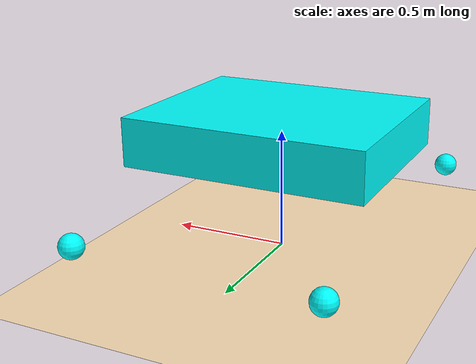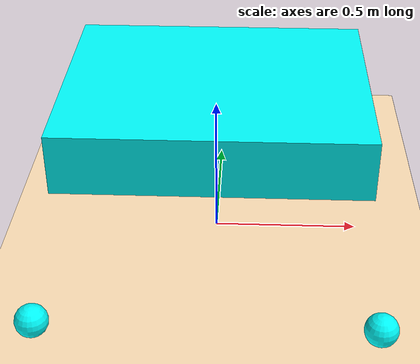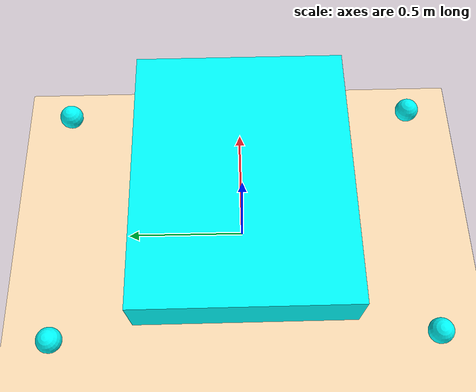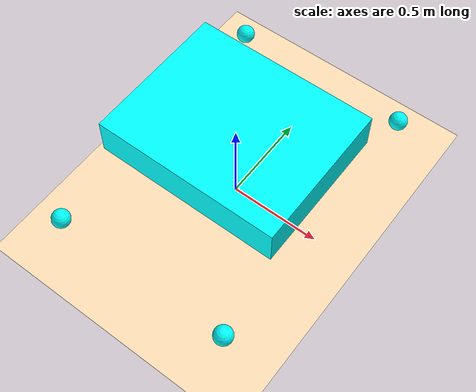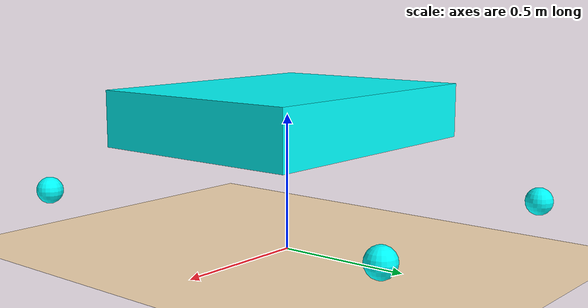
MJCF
<mujoco>
	<worldbody>
		<light diffuse=".5 .5 .5" pos="0 0 3" dir="0 0 -1"/>
		<geom type="plane" size="10 10 0.1" rgba="1 .88 0.72 0.8"/>
		<body pos="0 0 0.5">
			<joint type="free"/>
			<geom type="box" size=".5 .4 .1" rgba="0 1 1 1"/>

			<body pos="0.5 0.75 -0.3">
				<joint name="left_back" type="hinge" axis="0 1 0"/>
				<geom type="sphere" size=".05" rgba="0 1 1 1"/>
			</body>

			<body pos="0.5 -0.75 -0.3">
				<joint name="right_back" type="hinge" axis="0 1 0"/>
				<geom type="sphere" size=".05" rgba="0 1 1 1"/>
			</body>

			<body pos="-0.5 0.75 -0.3">
				<joint name="left_front" type="hinge" axis="0 1 0"/>
				<geom type="sphere" size=".05" rgba="0 1 1 1"/>
			</body>

			<body pos="-0.5 -0.75 -0.3">
				<joint name="right_front" type="hinge" axis="0 1 0"/>
				<geom type="sphere" size=".05" rgba="0 1 1 1"/>
			</body>

		</body>
	</worldbody>

	<actuator>
		<motor joint="left_back" name="lb_motor"/>
		<motor joint="right_back" name="rb_motor"/>
		<motor joint="left_front" name="lf_motor"/>
		<motor joint="right_front" name="rf_motor"/>
	</actuator>

</mujoco>
